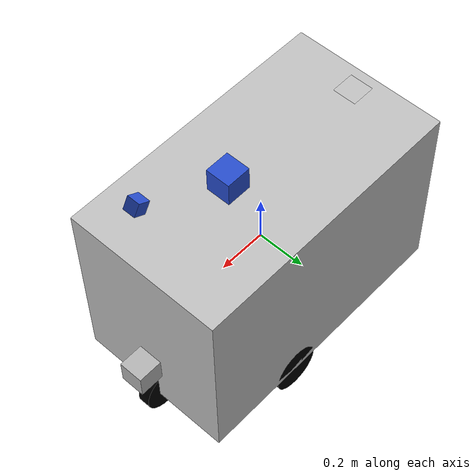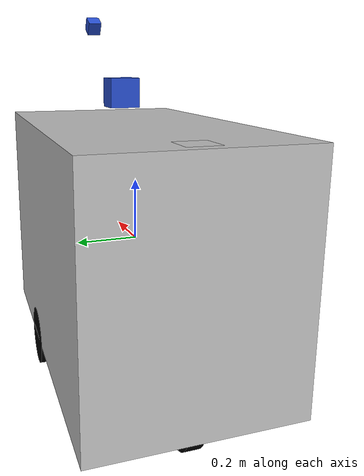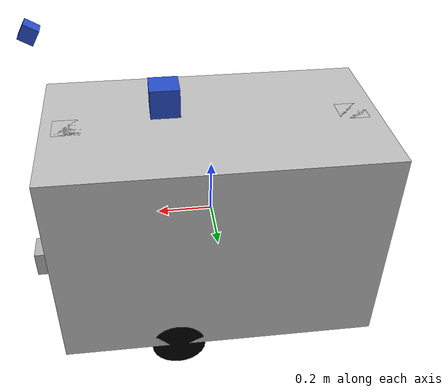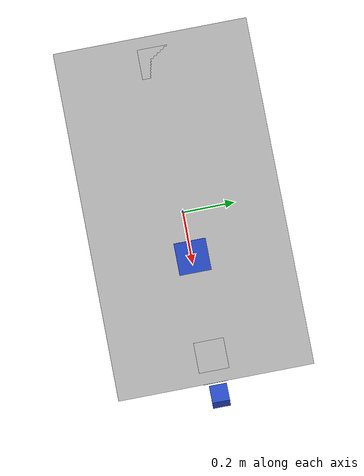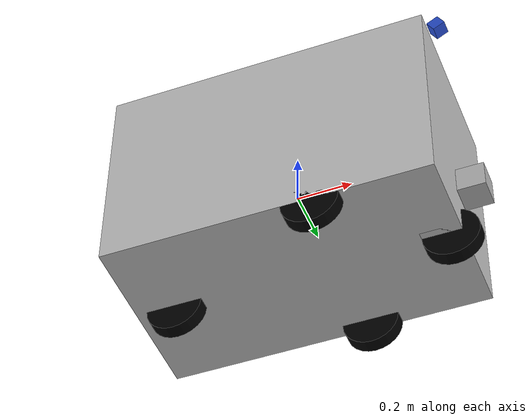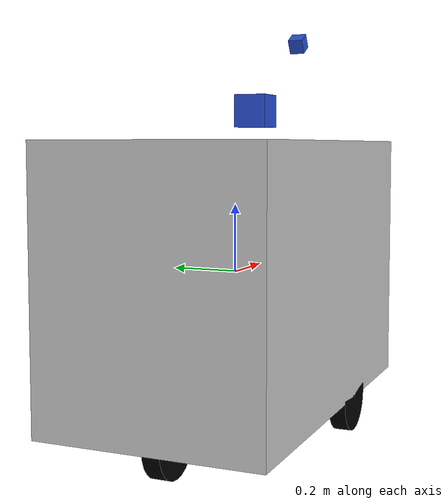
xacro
<?xml version="1.0" ?>
<robot name="my_vehicle">
  <!-- RGBD Camera-->
  <link name="base_link">
    <inertial>
      <mass value="1.0" />
      <inertia ixx="0.015" iyy="0.0375" izz="0.0375" ixy="0" ixz="0" iyz="0" />
    </inertial>
    <visual>
      <geometry>
        <box size="1.16195 0.651 0.77596" />
      </geometry>
      <material name="silver">
        <color rgba="0.75 0.75 0.75 1" />
      </material>
    </visual>
    <collision>
      <geometry>
        <box size="0.6 0.3 0.3" />
      </geometry>
    </collision>
  </link>
  <link name="back_caster">
    <inertial>
      <mass value="0.1" />
      <inertia ixx="0.00083" iyy="0.00083" izz="0.000167" ixy="0" ixz="0" iyz="0" />
    </inertial>
    <visual>
      <geometry>
        <box size="0.1 0.1 0.77596" />
      </geometry>
      <material name="silver" />
    </visual>
    <collision>
      <geometry>
        <box size="0.1 0.1 0.77596" />
      </geometry>
    </collision>
  </link>
  <joint name="back_caster_joint" type="continuous">
    <axis xyz="0 0 1" />
    <parent link="base_link" />
    <child link="back_caster" />
    <origin rpy="0 0 0" xyz="-0.491695 0 0" />
  </joint>
  <link name="back_wheel">
    <inertial>
      <mass value="0.1" />
      <inertia ixx="5.1458e-5" iyy="5.1458e-5" izz="6.125e-5" ixy="0" ixz="0" iyz="0" />
    </inertial>
    <visual>
      <geometry>
        <cylinder length="0.05" radius="0.1" />
      </geometry>
      <material name="black" />
    </visual>
    <collision>
      <geometry>
        <cylinder length="0.05" radius="0.1" />
      </geometry>
    </collision>

  </link>
  <joint name="back_wheel_joint" type="continuous">
    <axis xyz="0 0 1" />
    <parent link="back_caster" />
    <child link="back_wheel" />
    <origin rpy="-1.5708 0 0" xyz="0.05 0 -.38798" />
  </joint>
  <link name="front_caster">
    <inertial>
      <mass value="0.1" />
      <inertia ixx="0.00083" iyy="0.00083" izz="0.000167" ixy="0" ixz="0" iyz="0" />
    </inertial>
    <visual>
      <geometry>
        <box size="0.1 0.1 0.77596" />
      </geometry>
      <material name="silver" />
    </visual>
    <collision>
      <geometry>
        <box size="0.1 0.1 0.77596" />
      </geometry>
    </collision>
  </link>
  <joint name="front_caster_joint" type="continuous">
    <axis xyz="0 0 1" />
    <parent link="base_link" />
    <child link="front_caster" />
    <origin rpy="0 0 0" xyz="0.491695 0 0" />
  </joint>
  <link name="front_wheel">
    <inertial>
      <mass value="0.1" />
      <inertia ixx="5.1458e-5" iyy="5.1458e-5" izz="6.125e-5" ixy="0" ixz="0" iyz="0" />
    </inertial>
    <visual>
      <geometry>
        <cylinder length="0.05" radius="0.1" />
      </geometry>
      <material name="black" />
    </visual>
    <collision>
      <geometry>
        <cylinder length="0.05" radius="0.1" />
      </geometry>
    </collision>

  </link>
  <joint name="front_wheel_joint" type="continuous">
    <axis xyz="0 0 1" />
    <parent link="front_caster" />
    <child link="front_wheel" />
    <origin rpy="-1.5708 0 0" xyz="0.05 0 -.38798" />
  </joint>
  <link name="right_wheel">
    <inertial>
      <mass value="0.1" />
      <inertia ixx="5.1458e-5" iyy="5.1458e-5" izz="6.125e-5" ixy="0" ixz="0" iyz="0" />
    </inertial>
    <visual>
      <geometry>
        <cylinder length="0.05" radius="0.1" />
      </geometry>
      <material name="black">
        <color rgba="0 0 0 1" />
      </material>
    </visual>
    <collision>
      <geometry>
        <cylinder length="0.05" radius="0.1" />
      </geometry>
    </collision>
  </link>
  <joint name="right_wheel_joint" type="continuous">
    <axis xyz="0 0 1" />
    <parent link="base_link" />
    <child link="right_wheel" />
    <origin rpy="-1.5708 0 0" xyz="0.159795 -.3005 -.38798" />
  </joint>
  <link name="left_wheel">
    <inertial>
      <mass value="0.1" />
      <inertia ixx="5.1458e-5" iyy="5.1458e-5" izz="6.125e-5" ixy="0" ixz="0" iyz="0" />
    </inertial>
    <visual>
      <geometry>
        <cylinder length="0.05" radius="0.1" />
      </geometry>
      <material name="black" />
    </visual>
    <collision>
      <geometry>
        <cylinder length="0.05" radius="0.1" />
      </geometry>
    </collision>
  </link>
  <joint name="left_wheel_joint" type="continuous">
    <axis xyz="0 0 1" />
    <parent link="base_link" />
    <child link="left_wheel" />
    <origin rpy="-1.5708 0 0" xyz="0.159795 0.3005 -.38978" />
  </joint>
  <link name="lidar_link">
    <collision>
      <origin xyz="0 0 0" rpy="0 0 0" />
      <geometry>
        <box size="0.1 0.1 0.1" />
      </geometry>
    </collision>
    <visual>
      <origin xyz="0 0 0" rpy="0 0 0" />
      <geometry>
        <box size="0.1 0.1 0.1" />
      </geometry>
    </visual>
    <inertial>
      <mass value="1e-5" />
      <origin xyz="0 0 0" rpy="0 0 0" />
      <inertia ixx="1e-6" ixy="0" ixz="0" iyy="1e-6" iyz="0" izz="1e-6" />
    </inertial>
  </link>
  <joint name="lidar_joint" type="fixed">
    <origin xyz="0.630975 0 -0.1807467" rpy="0 0 0" />
    <parent link="base_link" />
    <child link="lidar_link" />
  </joint>
  <link name="camera_link">
    <visual>
      <origin rpy="0 0 0" xyz="0 0 0" />
      <geometry>
        <box size="0.05 0.05 0.05" />
      </geometry>
      <material name="Blue" />
    </visual>
  </link>
  <joint name="camera_joint" type="fixed">
    <origin rpy="0 1.0466 0" xyz="0.555975 0 0.72404" />
    <parent link="base_link" />
    <child link="camera_link" />
  </joint>
  <joint name="camera_optical_joint" type="fixed">
    <origin xyz="0 0 0" rpy="-1.5707 0 -1.5707"/>
    <parent link="camera_link"/>
    <child link="camera_link_optical"/>
  </joint>

  <link name="camera_link_optical">
  </link>
  <link name="imu_link">
    <visual>
      <origin rpy="0 0 0" xyz="0 0 0" />
      <geometry>
        <box size="0.05 0.05 0.05" />
      </geometry>
      <material name="Blue" />
    </visual>
  </link>

  <joint name="imu_joint" type="fixed">
    <origin rpy="0 0 0" xyz="0.16 0 0" />
    <parent link="base_link" />
    <child link="imu_link" />
  </joint>
  <link name="gps_link">
    <visual>
      <origin rpy="0 0 0" xyz="0 0 0" />
      <geometry>
        <box size="0.1 0.1 0.1" />
      </geometry>
      <material name="Blue" />
    </visual>
  </link>
  <joint name="gps_joint" type="fixed">
    <origin rpy="0 0 0" xyz="0.16 0 0.48011" />
    <parent link="base_link" />
    <child link="gps_link" />
  </joint>
  <gazebo>
    <plugin name="differential_drive_controller" filename="libgazebo_ros_diff_drive.so">
      <leftJoint>left_wheel_joint</leftJoint>
      <odometryTopic>odom</odometryTopic>
      <odometryFrame>odom</odometryFrame>
      <publishWheelTF>false</publishWheelTF>
      <publishOdomTF>true</publishOdomTF>
      <wheelTorque>5</wheelTorque>
      <wheelAcceleration>0</wheelAcceleration>
      <updateRate>100</updateRate>
      <odometrySource>world</odometrySource> <!-- 'encoder' instead of 'world' is also possible -->
      <publishTf>1</publishTf>
      <rosDebugLevel>na</rosDebugLevel>
      <rightJoint>right_wheel_joint</rightJoint>
      <robotBaseFrame>base_link</robotBaseFrame>
      <wheelSeparation>0.25</wheelSeparation>
      <wheelDiameter>0.07</wheelDiameter>
      <publishWheelJointState>true</publishWheelJointState>
      <commandTopic>cmd_vel</commandTopic>
      <robotBaseFrame>base_link</robotBaseFrame>
    </plugin>
  </gazebo>
  <gazebo reference="lidar_link">
    <sensor name="head_lidar_sensor" type="ray">
      <pose>0 0 0 0 0 0</pose>
      <visualize>true</visualize>
      <update_rate>25</update_rate> <!-- choosen for SICK LMS111-->
      <ray>
        <scan>
          <horizontal>
            <samples>720</samples>
            <resolution>1</resolution>
            <min_angle>-2.35619</min_angle>
            <max_angle>2.35619</max_angle>
          </horizontal>
        </scan>
        <range>
          <min>0.5</min>
          <max>20.0</max>
          <resolution>0.001</resolution>
        </range>
      </ray>
      <plugin filename="libgazebo_ros_laser.so" name="gazebo_ros_head_hokuyo_controller">
        <topicName>scan</topicName>
        <frameName>lidar_link</frameName>
      </plugin>
    </sensor>
  </gazebo>

  <!-- RGBD Camera -->
  <gazebo reference="camera_link">
    <sensor type="depth" name="camera1">
        <always_on>1</always_on>
        <update_rate>20.0</update_rate>
        <visualize>true</visualize>
        <camera>
            <horizontal_fov>1.047</horizontal_fov>
            <image>
                <width>640</width>
                <height>480</height>
                <format>R8G8B8</format>
            </image>
            <depth_camera>

            </depth_camera>
            <clip>
                <near>0.1</near>
                <far>20</far>
            </clip>
        </camera>
             <plugin name="camera_controller" filename="libgazebo_ros_openni_kinect.so">
             <alwaysOn>true</alwaysOn>
                <updateRate>10.0</updateRate>
                <cameraName>camera</cameraName>
                <frameName>camera_link_optical</frameName>
            <imageTopicName>rgb/image_raw</imageTopicName>
            <depthImageTopicName>depth/image_raw</depthImageTopicName>
            <pointCloudTopicName>depth/points</pointCloudTopicName>
            <cameraInfoTopicName>rgb/camera_info</cameraInfoTopicName>
            <depthImageCameraInfoTopicName>depth/camera_info</depthImageCameraInfoTopicName>
            <pointCloudCutoff>0.4</pointCloudCutoff>
                <hackBaseline>0.07</hackBaseline>
                <distortionK1>0.0</distortionK1>
                <distortionK2>0.0</distortionK2>
                <distortionK3>0.0</distortionK3>
                <distortionT1>0.0</distortionT1>
                <distortionT2>0.0</distortionT2>
            <CxPrime>0.0</CxPrime>
            <Cx>0.0</Cx>
            <Cy>0.0</Cy>
            <focalLength>0.0</focalLength>
            </plugin>
    </sensor>
  </gazebo>

  <!-- gps-->
  <gazebo>
    <plugin name="novatel_gps_sim" filename="libhector_gazebo_ros_gps.so">
      <alwaysOn>1</alwaysOn>
      <updateRate>10.0</updateRate>
      <bodyName>gps_link</bodyName>
      <topicName>gps</topicName>
      <velocityTopicName>gps_velocity</velocityTopicName>
      <drift>5.0 5.0 5.0</drift>
      <gaussianNoise>0.1 0.1 0.1</gaussianNoise>
      <velocityDrift>0 0 0</velocityDrift>
      <velocityGaussianNoise>0.1 0.1 0.1</velocityGaussianNoise>
    </plugin>
  </gazebo>
  <!-- imu -->
  <gazebo reference="imu_link">
    <gravity>true</gravity>
    <sensor name="imu_sensor" type="imu">
      <always_on>true</always_on>
      <update_rate>100.0</update_rate>
      <visualize>false</visualize>
      <topic>imu</topic>
      <plugin filename="libgazebo_ros_imu_sensor.so" name="imu_plugin">
        <topicName>imu</topicName>
        <bodyName>imu_link</bodyName>
        <updateRateHZ>100.0</updateRateHZ>
        <gaussianNoise>0.0</gaussianNoise>
        <xyzOffset>0 0 0</xyzOffset>
        <rpyOffset>0 0 0</rpyOffset>
        <frameName>imu_link</frameName>
      </plugin>
      <pose>0 0 0 0 0 0</pose>
    </sensor>
  </gazebo>
</robot>
